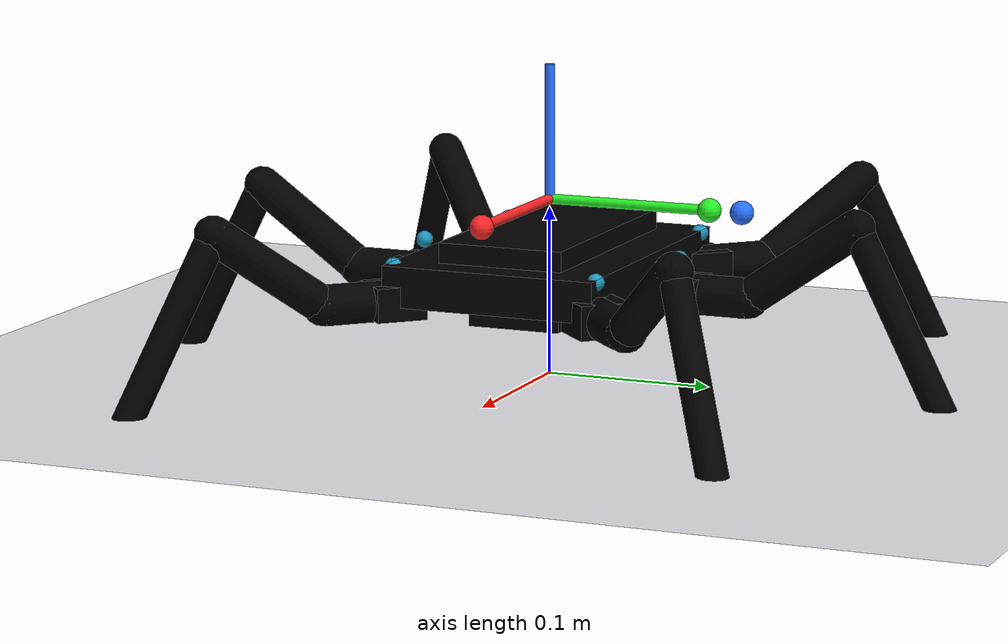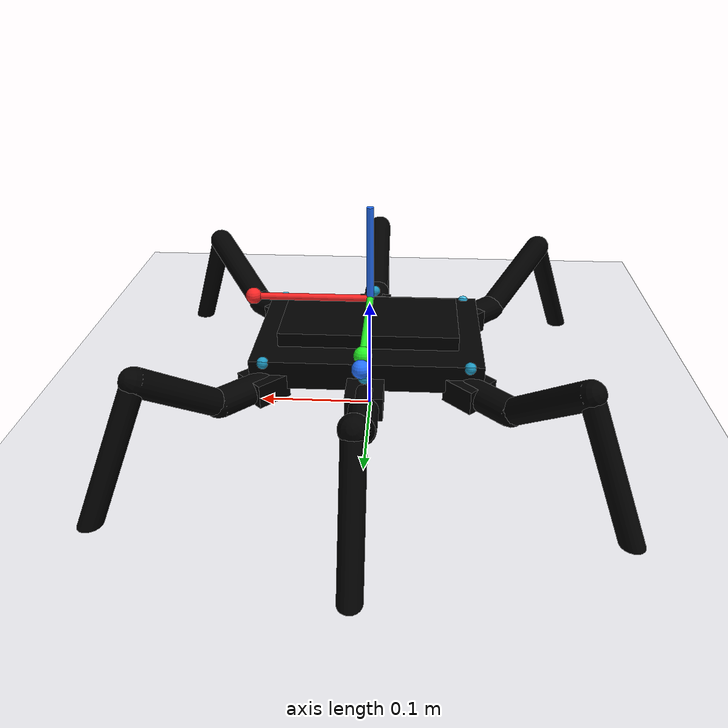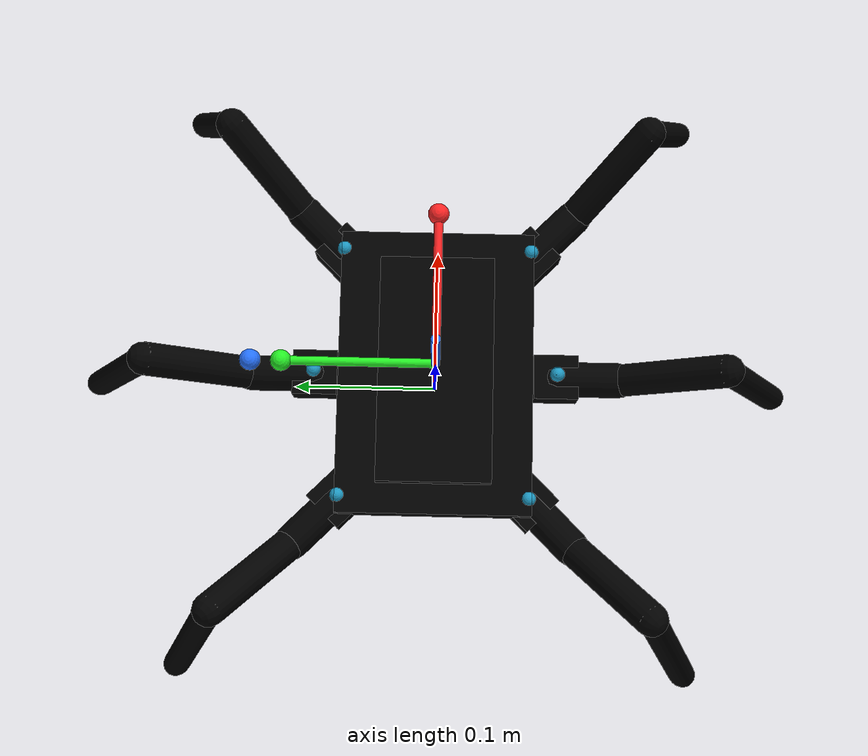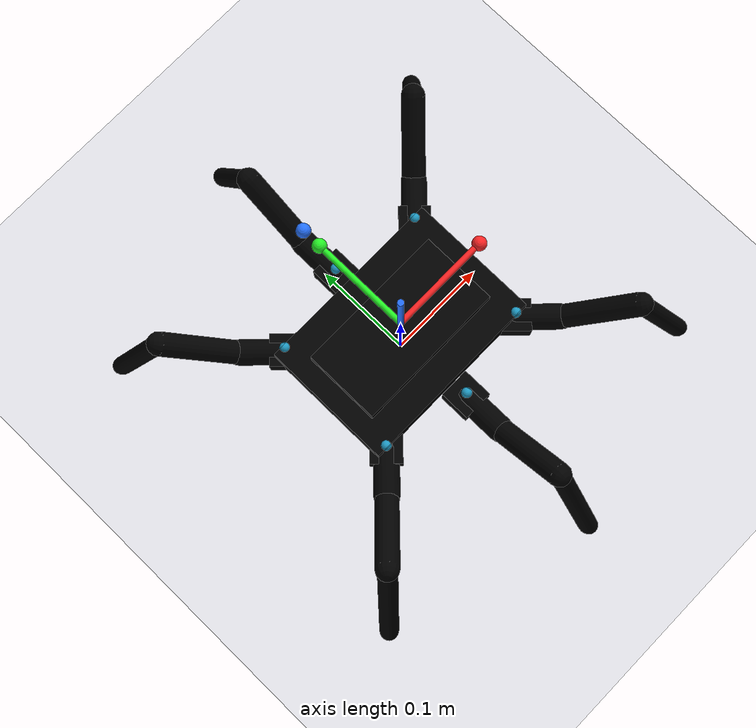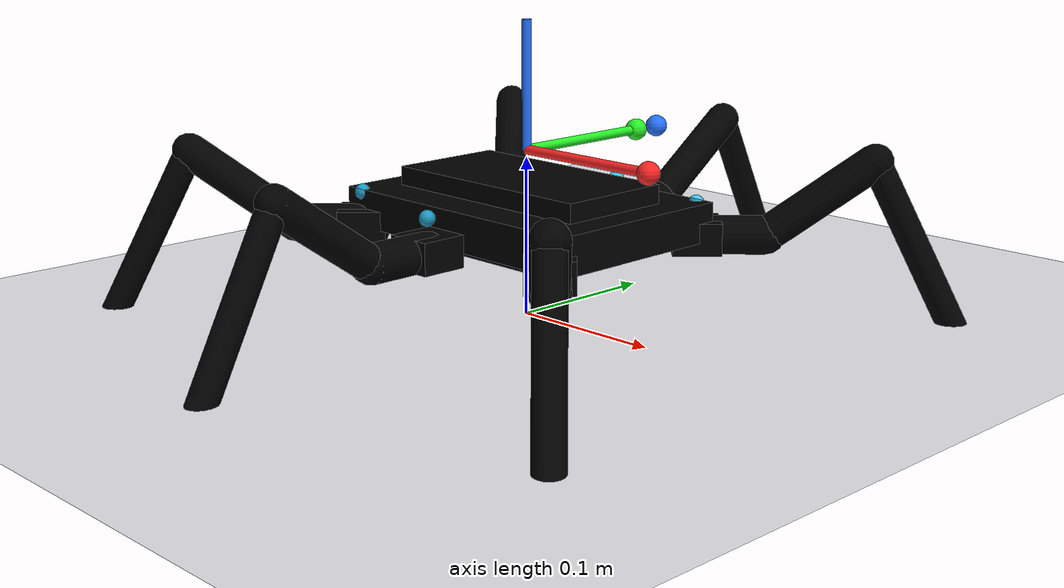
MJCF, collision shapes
<mujoco model="makeyourpet_hexapod_high_fidelity">
  <compiler angle="degree" coordinate="local"/>
  <option gravity="0 0 -9.81" timestep="0.002" integrator="implicitfast"/>

  <visual>
    <scale framelength="0.15" framewidth="0.008"/>
  </visual>

  <!-- 視覺與網格資源載入 -->
  <asset>
    <!-- 3D 列印 STL 網格 (單位 mm -> m 縮放 0.001) -->
    <mesh name="mesh_frame" file="../MakeYourPet-hexapod/hexapod-main/STL/frame.stl" scale="0.001 0.001 0.001"/>
    <mesh name="mesh_top_cover" file="../MakeYourPet-hexapod/hexapod-main/STL/top-cover.stl" scale="0.001 0.001 0.001"/>
    <mesh name="mesh_left_coxa" file="../MakeYourPet-hexapod/hexapod-main/STL/left-coxa.stl" scale="0.001 0.001 0.001"/>
    <mesh name="mesh_left_femur" file="../MakeYourPet-hexapod/hexapod-main/STL/left-femur.stl" scale="0.001 0.001 0.001"/>
    <mesh name="mesh_left_tibia" file="../MakeYourPet-hexapod/hexapod-main/STL/left-tibia.stl" scale="0.001 0.001 0.001"/>
    <mesh name="mesh_right_coxa" file="../MakeYourPet-hexapod/hexapod-main/STL/right-coxa.stl" scale="0.001 0.001 0.001"/>
    <mesh name="mesh_right_femur" file="../MakeYourPet-hexapod/hexapod-main/STL/right-femur.stl" scale="0.001 0.001 0.001"/>
    <mesh name="mesh_right_tibia" file="../MakeYourPet-hexapod/hexapod-main/STL/right-tibia.stl" scale="0.001 0.001 0.001"/>
    <mesh name="mesh_right_shield" file="../MakeYourPet-hexapod/hexapod-main/STL/shield.stl" scale="0.001 0.001 0.001"/>
    <mesh name="mesh_left_shield"  file="../MakeYourPet-hexapod/hexapod-main/STL/shield.stl" scale="0.001 -0.001 0.001"/>
    <mesh name="mesh_tip" file="../MakeYourPet-hexapod/hexapod-main/STL/tip.stl" scale="0.001 0.001 0.001"/>

    <!-- 外觀材質配色 -->
    <material name="mat_frame" rgba="0.18 0.20 0.24 1.0" specular="0.5" shininess="0.3"/>
    <material name="mat_armor" rgba="0.95 0.70 0.12 1.0" specular="0.8" shininess="0.5"/>
    <material name="mat_leg_dark" rgba="0.15 0.15 0.16 1.0" specular="0.4" shininess="0.2"/>
    <material name="mat_phone" rgba="0.08 0.08 0.10 1.0" specular="0.9" shininess="0.8"/>
    <material name="mat_rubber" rgba="0.85 0.15 0.15 1.0"/>
  </asset>

  <worldbody>
    <light diffuse="0.9 0.9 0.9" pos="0 0 2.5" dir="0 0 -1"/>
    <geom name="ground" type="plane" size="2 2 0.01" rgba="0.92 0.92 0.94 1" friction="1.2 0.05 0.001"/>

    <!-- 六足機體軀幹 (自由關節 freejoint) -->
    <body name="trunk" pos="0 0 0.065">
      <freejoint name="root"/>
      <!-- 核心修正：機身主框架 (frame) 與頂蓋 (top-cover) 沿 Z 軸旋轉 90 度，使長軸與六足朝向對齊！ -->
      <geom name="vis_frame" type="mesh" mesh="mesh_frame" pos="0 0 -0.008" euler="0 0 90" material="mat_frame" contype="0" conaffinity="0" group="1"/>
      <geom name="vis_cover" type="mesh" mesh="mesh_top_cover" pos="0 0 0.008" euler="0 0 90" material="mat_armor" contype="0" conaffinity="0" group="1"/>
      <!-- 物理碰撞層：內建極簡膠囊/盒體 (Collision Geometry, group=3) -->
      <geom name="col_frame" type="box" size="0.095 0.065 0.012" rgba="0 0 0 0" mass="0.50" group="3"/>
      <geom name="col_phone" type="box" pos="0 0 0.018" size="0.075 0.038 0.006" rgba="0 0 0 0" mass="0.18" group="3"/>
      <geom name="col_batt"  type="box" pos="0 0 -0.018" size="0.055 0.028 0.010" rgba="0 0 0 0" mass="0.25" group="3"/>
      <!-- 3D 空間坐標軸視覺導引 (XYZ 3D 羅盤箭頭, group=1 視覺層無質量無碰撞) -->
      <!-- +X (紅 / 前方 Front): 長度 100mm -->
      <geom name="vis_axis_x" type="cylinder" fromto="0 0 0.04 0.10 0 0.04" size="0.003" rgba="1.0 0.15 0.15 0.95" contype="0" conaffinity="0" group="1"/>
      <geom name="vis_axis_x_tip" type="sphere" pos="0.10 0 0.04" size="0.007" rgba="1.0 0.15 0.15 1.0" contype="0" conaffinity="0" group="1"/>
      <!-- +Y (綠 / 左側 Left): 長度 100mm -->
      <geom name="vis_axis_y" type="cylinder" fromto="0 0 0.04 0 0.10 0.04" size="0.003" rgba="0.15 0.95 0.15 0.95" contype="0" conaffinity="0" group="1"/>
      <geom name="vis_axis_y_tip" type="sphere" pos="0 0.10 0.04" size="0.007" rgba="0.15 0.95 0.15 1.0" contype="0" conaffinity="0" group="1"/>
      <!-- +Z (藍 / 上方 Up): 長度 80mm -->
      <geom name="vis_axis_z" type="cylinder" fromto="0 0 0.04 0 0 0.12" size="0.003" rgba="0.15 0.45 1.0 0.95" contype="0" conaffinity="0" group="1"/>
      <geom name="vis_axis_z_tip" type="sphere" pos="0 0.12 0.04" size="0.007" rgba="0.15 0.45 1.0 1.0" contype="0" conaffinity="0" group="1"/>

      <!-- ========== 左前足 (L1) ========== -->
      <body name="mount_L1" pos="0.0835  0.0630 -0.010" euler="0 0 45.0">
        <site name="tag_L1" pos="0 0 0.02" size="0.005" rgba="0.2 0.8 1.0 0.8"/>
        <geom name="col_base_L1" type="box" size="0.015 0.015 0.01" rgba="0 0 0 0" mass="0.02" group="3"/>
        <!-- 1. Coxa 轉向節 (Yaw): 43mm -->
        <body name="coxa_L1" pos="0 0 0">
          <joint name="joint_L1_coxa" type="hinge" axis="0 0 1" range="-45 45" damping="0.1"/>
          <geom name="vis_coxa_L1" type="mesh" mesh="mesh_left_coxa" material="mat_leg_dark" contype="0" conaffinity="0" group="1"/>
          <geom name="col_coxa_L1" type="capsule" fromto="0 0 0 0.043 0 0" size="0.012" mass="0.06" rgba="0 0 0 0" group="3"/>
          <!-- 2. Femur 大腿升降節 (Pitch): 80mm (Z 字形斜挑頂端 +46mm) -->
          <body name="femur_L1" pos="0.043 0 0">
            <joint name="joint_L1_femur" type="hinge" axis="0 1 0" range="-45 45" damping="0.1"/>
            <geom name="vis_femur_L1" type="mesh" mesh="mesh_left_femur" pos="-0.0009 -0.0118 -0.0018" euler="90 0 35.26" material="mat_armor" contype="0" conaffinity="0" group="1"/>
            <geom name="col_femur_L1" type="capsule" fromto="0 0 0 0.065 0 0.046" size="0.011" mass="0.08" rgba="0 0 0 0" group="3"/>
            <!-- 3. Tibia 小腿屈伸節 (Pitch): 134mm -->
            <body name="tibia_L1" pos="0.065 0 0.046">
              <joint name="joint_L1_tibia" type="hinge" axis="0 1 0" range="-60 60" damping="0.1"/>
              <geom name="vis_tibia_L1" type="mesh" mesh="mesh_left_tibia" pos="0.0634 -0.0070 -0.0028" euler="0 0 180" material="mat_leg_dark" contype="0" conaffinity="0" group="1"/>
              <geom name="vis_shield_L1" type="mesh" mesh="mesh_left_shield" pos="0.0634 -0.0070 -0.0028" euler="0 0 180" material="mat_armor" contype="0" conaffinity="0" group="1"/>
              <geom name="col_tibia_L1" type="capsule" fromto="0 0 0 0.0575 0 -0.1137" size="0.009" mass="0.05" rgba="0 0 0 0" group="3"/>
              <!-- 4. 足端觸地接觸球 (Foot Tip) -->
              <geom name="vis_tip_L1" type="mesh" mesh="mesh_tip" pos="0.0575 0 -0.1137" material="mat_rubber" contype="0" conaffinity="0" group="1"/>
              <geom name="tip_L1" type="sphere" pos="0.0575 0 -0.1137" size="0.012" mass="0.01" material="mat_rubber" friction="1.2 0.05 0.001" solref="0.01 1" solimp="0.9 0.95 0.001" group="3"/>
            </body>
          </body>
        </body>
      </body>

      <!-- ========== 左中足 (L2) ========== -->
      <body name="mount_L2" pos="0.0000  0.0815 -0.010" euler="0 0 90.0">
        <site name="tag_L2" pos="0 0 0.02" size="0.005" rgba="0.2 0.8 1.0 0.8"/>
        <geom name="col_base_L2" type="box" size="0.015 0.015 0.01" rgba="0 0 0 0" mass="0.02" group="3"/>
        <!-- 1. Coxa 轉向節 (Yaw): 43mm -->
        <body name="coxa_L2" pos="0 0 0">
          <joint name="joint_L2_coxa" type="hinge" axis="0 0 1" range="-45 45" damping="0.1"/>
          <geom name="vis_coxa_L2" type="mesh" mesh="mesh_left_coxa" material="mat_leg_dark" contype="0" conaffinity="0" group="1"/>
          <geom name="col_coxa_L2" type="capsule" fromto="0 0 0 0.043 0 0" size="0.012" mass="0.06" rgba="0 0 0 0" group="3"/>
          <!-- 2. Femur 大腿升降節 (Pitch): 80mm (Z 字形斜挑頂端 +46mm) -->
          <body name="femur_L2" pos="0.043 0 0">
            <joint name="joint_L2_femur" type="hinge" axis="0 1 0" range="-45 45" damping="0.1"/>
            <geom name="vis_femur_L2" type="mesh" mesh="mesh_left_femur" pos="-0.0009 -0.0118 -0.0018" euler="90 0 35.26" material="mat_armor" contype="0" conaffinity="0" group="1"/>
            <geom name="col_femur_L2" type="capsule" fromto="0 0 0 0.065 0 0.046" size="0.011" mass="0.08" rgba="0 0 0 0" group="3"/>
            <!-- 3. Tibia 小腿屈伸節 (Pitch): 134mm -->
            <body name="tibia_L2" pos="0.065 0 0.046">
              <joint name="joint_L2_tibia" type="hinge" axis="0 1 0" range="-60 60" damping="0.1"/>
              <geom name="vis_tibia_L2" type="mesh" mesh="mesh_left_tibia" pos="0.0634 -0.0070 -0.0028" euler="0 0 180" material="mat_leg_dark" contype="0" conaffinity="0" group="1"/>
              <geom name="vis_shield_L2" type="mesh" mesh="mesh_left_shield" pos="0.0634 -0.0070 -0.0028" euler="0 0 180" material="mat_armor" contype="0" conaffinity="0" group="1"/>
              <geom name="col_tibia_L2" type="capsule" fromto="0 0 0 0.0575 0 -0.1137" size="0.009" mass="0.05" rgba="0 0 0 0" group="3"/>
              <!-- 4. 足端觸地接觸球 (Foot Tip) -->
              <geom name="vis_tip_L2" type="mesh" mesh="mesh_tip" pos="0.0621 -0.0025 -0.1200" material="mat_rubber" contype="0" conaffinity="0" group="1"/>
              <geom name="tip_L2" type="sphere" pos="0.0621 -0.0025 -0.1200" size="0.012" mass="0.01" material="mat_rubber" friction="1.2 0.05 0.001" solref="0.01 1" solimp="0.9 0.95 0.001" group="3"/>
            </body>
          </body>
        </body>
      </body>

      <!-- ========== 左後足 (L3) ========== -->
      <body name="mount_L3" pos="-0.0835  0.0630 -0.010" euler="0 0 135.0">
        <site name="tag_L3" pos="0 0 0.02" size="0.005" rgba="0.2 0.8 1.0 0.8"/>
        <geom name="col_base_L3" type="box" size="0.015 0.015 0.01" rgba="0 0 0 0" mass="0.02" group="3"/>
        <!-- 1. Coxa 轉向節 (Yaw): 43mm -->
        <body name="coxa_L3" pos="0 0 0">
          <joint name="joint_L3_coxa" type="hinge" axis="0 0 1" range="-45 45" damping="0.1"/>
          <geom name="vis_coxa_L3" type="mesh" mesh="mesh_left_coxa" material="mat_leg_dark" contype="0" conaffinity="0" group="1"/>
          <geom name="col_coxa_L3" type="capsule" fromto="0 0 0 0.043 0 0" size="0.012" mass="0.06" rgba="0 0 0 0" group="3"/>
          <!-- 2. Femur 大腿升降節 (Pitch): 80mm (Z 字形斜挑頂端 +46mm) -->
          <body name="femur_L3" pos="0.043 0 0">
            <joint name="joint_L3_femur" type="hinge" axis="0 1 0" range="-45 45" damping="0.1"/>
            <geom name="vis_femur_L3" type="mesh" mesh="mesh_left_femur" pos="-0.0009 -0.0118 -0.0018" euler="90 0 35.26" material="mat_armor" contype="0" conaffinity="0" group="1"/>
            <geom name="col_femur_L3" type="capsule" fromto="0 0 0 0.065 0 0.046" size="0.011" mass="0.08" rgba="0 0 0 0" group="3"/>
            <!-- 3. Tibia 小腿屈伸節 (Pitch): 134mm -->
            <body name="tibia_L3" pos="0.065 0 0.046">
              <joint name="joint_L3_tibia" type="hinge" axis="0 1 0" range="-60 60" damping="0.1"/>
              <geom name="vis_tibia_L3" type="mesh" mesh="mesh_left_tibia" pos="0.0634 -0.0070 -0.0028" euler="0 0 180" material="mat_leg_dark" contype="0" conaffinity="0" group="1"/>
              <geom name="vis_shield_L3" type="mesh" mesh="mesh_left_shield" pos="0.0634 -0.0070 -0.0028" euler="0 0 180" material="mat_armor" contype="0" conaffinity="0" group="1"/>
              <geom name="col_tibia_L3" type="capsule" fromto="0 0 0 0.0575 0 -0.1137" size="0.009" mass="0.05" rgba="0 0 0 0" group="3"/>
              <!-- 4. 足端觸地接觸球 (Foot Tip) -->
              <geom name="vis_tip_L3" type="mesh" mesh="mesh_tip" pos="0.0575 0 -0.1137" material="mat_rubber" contype="0" conaffinity="0" group="1"/>
              <geom name="tip_L3" type="sphere" pos="0.0575 0 -0.1137" size="0.012" mass="0.01" material="mat_rubber" friction="1.2 0.05 0.001" solref="0.01 1" solimp="0.9 0.95 0.001" group="3"/>
            </body>
          </body>
        </body>
      </body>

      <!-- ========== 右前足 (R1) ========== -->
      <body name="mount_R1" pos="0.0835 -0.0630 -0.010" euler="0 0 -45.0">
        <site name="tag_R1" pos="0 0 0.02" size="0.005" rgba="0.2 0.8 1.0 0.8"/>
        <geom name="col_base_R1" type="box" size="0.015 0.015 0.01" rgba="0 0 0 0" mass="0.02" group="3"/>
        <!-- 1. Coxa 轉向節 (Yaw): 43mm -->
        <body name="coxa_R1" pos="0 0 0">
          <joint name="joint_R1_coxa" type="hinge" axis="0 0 1" range="-45 45" damping="0.1"/>
          <geom name="vis_coxa_R1" type="mesh" mesh="mesh_right_coxa" material="mat_leg_dark" contype="0" conaffinity="0" group="1"/>
          <geom name="col_coxa_R1" type="capsule" fromto="0 0 0 0.043 0 0" size="0.012" mass="0.06" rgba="0 0 0 0" group="3"/>
          <!-- 2. Femur 大腿升降節 (Pitch): 80mm (Z 字形斜挑頂端 +46mm) -->
          <body name="femur_R1" pos="0.043 0 0">
            <joint name="joint_R1_femur" type="hinge" axis="0 1 0" range="-45 45" damping="0.1"/>
            <geom name="vis_femur_R1" type="mesh" mesh="mesh_right_femur" pos="-0.0020 -0.0118 -0.0003" euler="-90 0 -35.26" material="mat_armor" contype="0" conaffinity="0" group="1"/>
            <geom name="col_femur_R1" type="capsule" fromto="0 0 0 0.065 0 0.046" size="0.011" mass="0.08" rgba="0 0 0 0" group="3"/>
            <!-- 3. Tibia 小腿屈伸節 (Pitch): 134mm -->
            <body name="tibia_R1" pos="0.065 0 0.046">
              <joint name="joint_R1_tibia" type="hinge" axis="0 1 0" range="-60 60" damping="0.1"/>
              <geom name="vis_tibia_R1" type="mesh" mesh="mesh_right_tibia" pos="0.0634  0.0070 -0.0028" euler="0 0 180" material="mat_leg_dark" contype="0" conaffinity="0" group="1"/>
              <geom name="vis_shield_R1" type="mesh" mesh="mesh_right_shield" pos="0.0634  0.0070 -0.0028" euler="0 0 180" material="mat_armor" contype="0" conaffinity="0" group="1"/>
              <geom name="col_tibia_R1" type="capsule" fromto="0 0 0 0.0575 0 -0.1137" size="0.009" mass="0.05" rgba="0 0 0 0" group="3"/>
              <!-- 4. 足端觸地接觸球 (Foot Tip) -->
              <geom name="vis_tip_R1" type="mesh" mesh="mesh_tip" pos="0.0575 0 -0.1137" material="mat_rubber" contype="0" conaffinity="0" group="1"/>
              <geom name="tip_R1" type="sphere" pos="0.0575 0 -0.1137" size="0.012" mass="0.01" material="mat_rubber" friction="1.2 0.05 0.001" solref="0.01 1" solimp="0.9 0.95 0.001" group="3"/>
            </body>
          </body>
        </body>
      </body>

      <!-- ========== 右中足 (R2) ========== -->
      <body name="mount_R2" pos="0.0000 -0.0815 -0.010" euler="0 0 -90.0">
        <site name="tag_R2" pos="0 0 0.02" size="0.005" rgba="0.2 0.8 1.0 0.8"/>
        <geom name="col_base_R2" type="box" size="0.015 0.015 0.01" rgba="0 0 0 0" mass="0.02" group="3"/>
        <!-- 1. Coxa 轉向節 (Yaw): 43mm -->
        <body name="coxa_R2" pos="0 0 0">
          <joint name="joint_R2_coxa" type="hinge" axis="0 0 1" range="-45 45" damping="0.1"/>
          <geom name="vis_coxa_R2" type="mesh" mesh="mesh_right_coxa" material="mat_leg_dark" contype="0" conaffinity="0" group="1"/>
          <geom name="col_coxa_R2" type="capsule" fromto="0 0 0 0.043 0 0" size="0.012" mass="0.06" rgba="0 0 0 0" group="3"/>
          <!-- 2. Femur 大腿升降節 (Pitch): 80mm (Z 字形斜挑頂端 +46mm) -->
          <body name="femur_R2" pos="0.043 0 0">
            <joint name="joint_R2_femur" type="hinge" axis="0 1 0" range="-45 45" damping="0.1"/>
            <geom name="vis_femur_R2" type="mesh" mesh="mesh_right_femur" pos="-0.0020 -0.0118 -0.0003" euler="-90 0 -35.26" material="mat_armor" contype="0" conaffinity="0" group="1"/>
            <geom name="col_femur_R2" type="capsule" fromto="0 0 0 0.065 0 0.046" size="0.011" mass="0.08" rgba="0 0 0 0" group="3"/>
            <!-- 3. Tibia 小腿屈伸節 (Pitch): 134mm -->
            <body name="tibia_R2" pos="0.065 0 0.046">
              <joint name="joint_R2_tibia" type="hinge" axis="0 1 0" range="-60 60" damping="0.1"/>
              <geom name="vis_tibia_R2" type="mesh" mesh="mesh_right_tibia" pos="0.0634  0.0070 -0.0028" euler="0 0 180" material="mat_leg_dark" contype="0" conaffinity="0" group="1"/>
              <geom name="vis_shield_R2" type="mesh" mesh="mesh_right_shield" pos="0.0634  0.0070 -0.0028" euler="0 0 180" material="mat_armor" contype="0" conaffinity="0" group="1"/>
              <geom name="col_tibia_R2" type="capsule" fromto="0 0 0 0.0575 0 -0.1137" size="0.009" mass="0.05" rgba="0 0 0 0" group="3"/>
              <!-- 4. 足端觸地接觸球 (Foot Tip) -->
              <geom name="vis_tip_R2" type="mesh" mesh="mesh_tip" pos="0.0575 0 -0.1137" material="mat_rubber" contype="0" conaffinity="0" group="1"/>
              <geom name="tip_R2" type="sphere" pos="0.0575 0 -0.1137" size="0.012" mass="0.01" material="mat_rubber" friction="1.2 0.05 0.001" solref="0.01 1" solimp="0.9 0.95 0.001" group="3"/>
            </body>
          </body>
        </body>
      </body>

      <!-- ========== 右後足 (R3) ========== -->
      <body name="mount_R3" pos="-0.0835 -0.0630 -0.010" euler="0 0 -135.0">
        <site name="tag_R3" pos="0 0 0.02" size="0.005" rgba="0.2 0.8 1.0 0.8"/>
        <geom name="col_base_R3" type="box" size="0.015 0.015 0.01" rgba="0 0 0 0" mass="0.02" group="3"/>
        <!-- 1. Coxa 轉向節 (Yaw): 43mm -->
        <body name="coxa_R3" pos="0 0 0">
          <joint name="joint_R3_coxa" type="hinge" axis="0 0 1" range="-45 45" damping="0.1"/>
          <geom name="vis_coxa_R3" type="mesh" mesh="mesh_right_coxa" material="mat_leg_dark" contype="0" conaffinity="0" group="1"/>
          <geom name="col_coxa_R3" type="capsule" fromto="0 0 0 0.043 0 0" size="0.012" mass="0.06" rgba="0 0 0 0" group="3"/>
          <!-- 2. Femur 大腿升降節 (Pitch): 80mm (Z 字形斜挑頂端 +46mm) -->
          <body name="femur_R3" pos="0.043 0 0">
            <joint name="joint_R3_femur" type="hinge" axis="0 1 0" range="-45 45" damping="0.1"/>
            <geom name="vis_femur_R3" type="mesh" mesh="mesh_right_femur" pos="-0.0020 -0.0118 -0.0003" euler="-90 0 -35.26" material="mat_armor" contype="0" conaffinity="0" group="1"/>
            <geom name="col_femur_R3" type="capsule" fromto="0 0 0 0.065 0 0.046" size="0.011" mass="0.08" rgba="0 0 0 0" group="3"/>
            <!-- 3. Tibia 小腿屈伸節 (Pitch): 134mm -->
            <body name="tibia_R3" pos="0.065 0 0.046">
              <joint name="joint_R3_tibia" type="hinge" axis="0 1 0" range="-60 60" damping="0.1"/>
              <geom name="vis_tibia_R3" type="mesh" mesh="mesh_right_tibia" pos="0.0634  0.0070 -0.0028" euler="0 0 180" material="mat_leg_dark" contype="0" conaffinity="0" group="1"/>
              <geom name="vis_shield_R3" type="mesh" mesh="mesh_right_shield" pos="0.0634  0.0070 -0.0028" euler="0 0 180" material="mat_armor" contype="0" conaffinity="0" group="1"/>
              <geom name="col_tibia_R3" type="capsule" fromto="0 0 0 0.0575 0 -0.1137" size="0.009" mass="0.05" rgba="0 0 0 0" group="3"/>
              <!-- 4. 足端觸地接觸球 (Foot Tip) -->
              <geom name="vis_tip_R3" type="mesh" mesh="mesh_tip" pos="0.0575 0 -0.1137" material="mat_rubber" contype="0" conaffinity="0" group="1"/>
              <geom name="tip_R3" type="sphere" pos="0.0575 0 -0.1137" size="0.012" mass="0.01" material="mat_rubber" friction="1.2 0.05 0.001" solref="0.01 1" solimp="0.9 0.95 0.001" group="3"/>
            </body>
          </body>
        </body>
      </body>

    </body>
  </worldbody>

  <contact>
    <exclude body1="mount_L1" body2="coxa_L1"/>
    <exclude body1="coxa_L1" body2="femur_L1"/>
    <exclude body1="femur_L1" body2="tibia_L1"/>
    <exclude body1="mount_L2" body2="coxa_L2"/>
    <exclude body1="coxa_L2" body2="femur_L2"/>
    <exclude body1="femur_L2" body2="tibia_L2"/>
    <exclude body1="mount_L3" body2="coxa_L3"/>
    <exclude body1="coxa_L3" body2="femur_L3"/>
    <exclude body1="femur_L3" body2="tibia_L3"/>
    <exclude body1="mount_R1" body2="coxa_R1"/>
    <exclude body1="coxa_R1" body2="femur_R1"/>
    <exclude body1="femur_R1" body2="tibia_R1"/>
    <exclude body1="mount_R2" body2="coxa_R2"/>
    <exclude body1="coxa_R2" body2="femur_R2"/>
    <exclude body1="femur_R2" body2="tibia_R2"/>
    <exclude body1="mount_R3" body2="coxa_R3"/>
    <exclude body1="coxa_R3" body2="femur_R3"/>
    <exclude body1="femur_R3" body2="tibia_R3"/>
  </contact>

  <actuator>
    <position name="mot_L1_c" joint="joint_L1_coxa"  kp="12.0" kv="1.2" ctrlrange="-45 45" forcerange="-3.0 3.0"/>
    <position name="mot_L1_f" joint="joint_L1_femur" kp="12.0" kv="1.2" ctrlrange="-45 45" forcerange="-3.0 3.0"/>
    <position name="mot_L1_t" joint="joint_L1_tibia" kp="12.0" kv="1.2" ctrlrange="-60 60" forcerange="-3.0 3.0"/>
    <position name="mot_L2_c" joint="joint_L2_coxa"  kp="12.0" kv="1.2" ctrlrange="-45 45" forcerange="-3.0 3.0"/>
    <position name="mot_L2_f" joint="joint_L2_femur" kp="12.0" kv="1.2" ctrlrange="-45 45" forcerange="-3.0 3.0"/>
    <position name="mot_L2_t" joint="joint_L2_tibia" kp="12.0" kv="1.2" ctrlrange="-60 60" forcerange="-3.0 3.0"/>
    <position name="mot_L3_c" joint="joint_L3_coxa"  kp="12.0" kv="1.2" ctrlrange="-45 45" forcerange="-3.0 3.0"/>
    <position name="mot_L3_f" joint="joint_L3_femur" kp="12.0" kv="1.2" ctrlrange="-45 45" forcerange="-3.0 3.0"/>
    <position name="mot_L3_t" joint="joint_L3_tibia" kp="12.0" kv="1.2" ctrlrange="-60 60" forcerange="-3.0 3.0"/>
    <position name="mot_R1_c" joint="joint_R1_coxa"  kp="12.0" kv="1.2" ctrlrange="-45 45" forcerange="-3.0 3.0"/>
    <position name="mot_R1_f" joint="joint_R1_femur" kp="12.0" kv="1.2" ctrlrange="-45 45" forcerange="-3.0 3.0"/>
    <position name="mot_R1_t" joint="joint_R1_tibia" kp="12.0" kv="1.2" ctrlrange="-60 60" forcerange="-3.0 3.0"/>
    <position name="mot_R2_c" joint="joint_R2_coxa"  kp="12.0" kv="1.2" ctrlrange="-45 45" forcerange="-3.0 3.0"/>
    <position name="mot_R2_f" joint="joint_R2_femur" kp="12.0" kv="1.2" ctrlrange="-45 45" forcerange="-3.0 3.0"/>
    <position name="mot_R2_t" joint="joint_R2_tibia" kp="12.0" kv="1.2" ctrlrange="-60 60" forcerange="-3.0 3.0"/>
    <position name="mot_R3_c" joint="joint_R3_coxa"  kp="12.0" kv="1.2" ctrlrange="-45 45" forcerange="-3.0 3.0"/>
    <position name="mot_R3_f" joint="joint_R3_femur" kp="12.0" kv="1.2" ctrlrange="-45 45" forcerange="-3.0 3.0"/>
    <position name="mot_R3_t" joint="joint_R3_tibia" kp="12.0" kv="1.2" ctrlrange="-60 60" forcerange="-3.0 3.0"/>
  </actuator>
</mujoco>
